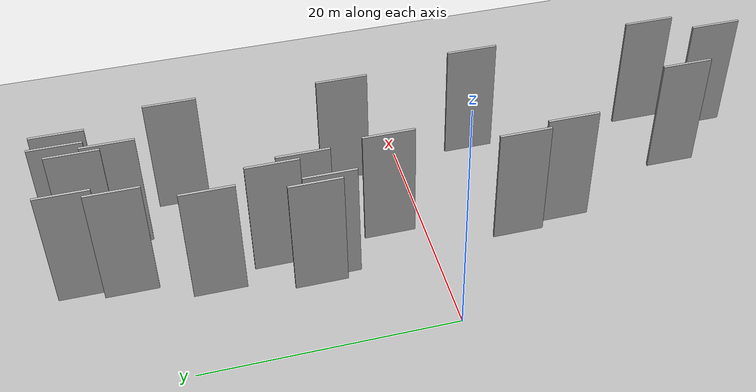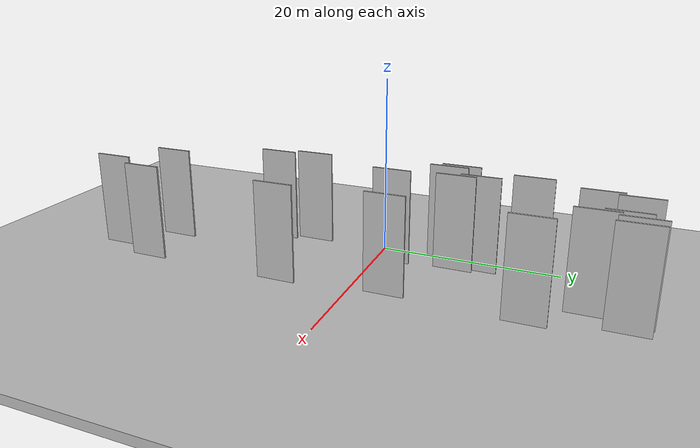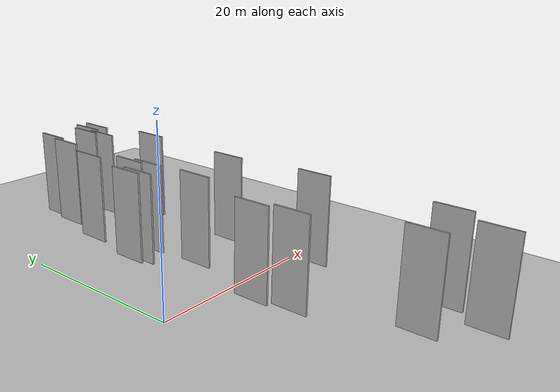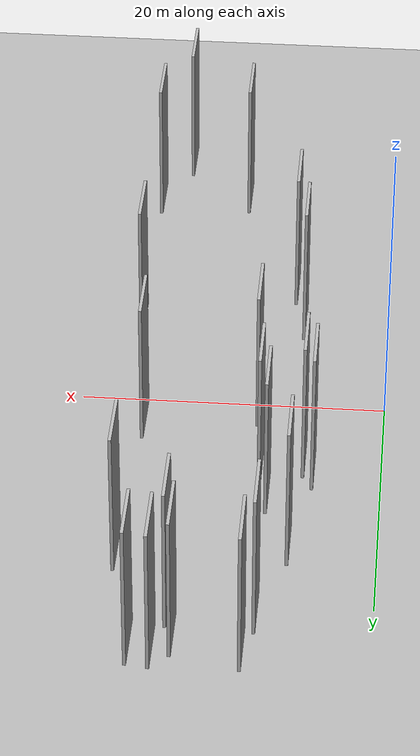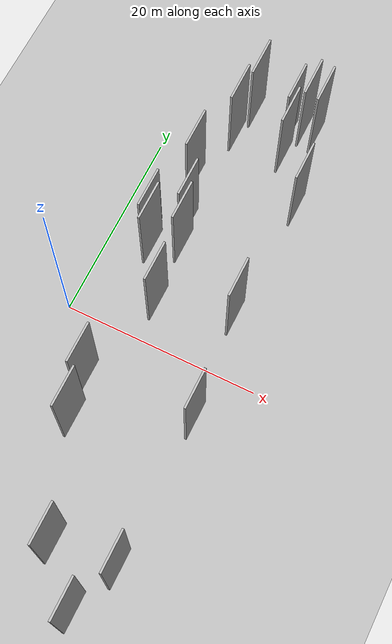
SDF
<?xml version="1.0" encoding="utf-8"?>

<sdf version="1.6">

   <world name="default">

      <gui fullscreen="0">

         <camera name="user_camera">

            <pose>-15 0 4.57585 0 0 0</pose>

            <view_controller>orbit</view_controller>

         </camera>

      </gui>

      <scene>

         <sky>

           <clouds>

             <speed>12</speed>

           </clouds>

         </sky>

         <ambient>0.4 0.4 0.4 1</ambient>

         <background>0.7 0.7 0.7 1</background>

         <shadows>1</shadows>

      </scene>

      <gravity>0 0 -9.8066</gravity>

      <magnetic_field>6e-06 2.3e-05 -4.2e-05</magnetic_field>

      <physics default="0" name="default_physics" type="ode">

         <ode>

            <solver>

               <type>quick</type>

               <iters>10</iters>

               <sor>1.0</sor>

               <use_dynamic_moi_rescaling>0</use_dynamic_moi_rescaling>

            </solver>

            <constraints>

               <cfm>0</cfm>

               <erp>0.2</erp>

               <contact_max_correcting_vel>100</contact_max_correcting_vel>

               <contact_surface_layer>0.001</contact_surface_layer>

            </constraints>

         </ode>

         <max_step_size>0.004</max_step_size>

         <real_time_factor>1</real_time_factor>

         <real_time_update_rate>250</real_time_update_rate>

      </physics>

      <light name="sun" type="directional">

         <cast_shadows>1</cast_shadows>

         <pose>0 0 10 0 0 0</pose>

         <diffuse>0.8 0.8 0.8 1</diffuse>

         <specular>0.2 0.2 0.2 1</specular>

         <attenuation>

            <range>1000</range>

            <constant>0.9</constant>

            <linear>0.01</linear>

            <quadratic>0.001</quadratic>

         </attenuation>

         <direction>-0.5 0.1 -0.9</direction>

      </light>

      <include>

         <name>ground_plane_1</name>

         <uri>model://HANNAS_ground_plane</uri>

         <pose>0 0 0  0 0 0</pose>

      </include>

      <include>

         <name>ground_plane_2</name>

         <uri>model://HANNAS_ground_plane</uri>

         <pose>100 0 0  0 0 0</pose>

      </include>

      <model name="HANNAS_wall_1">

         <static>1</static>

         <pose frame="">15.8943 18.3941 2.5 0.000000 0.000000 1.570796</pose>

         <link name="link">

            <pose frame="">0 0 5.00 0 0 0</pose>

            <collision name="collision">

               <geometry>

                  <box>

                     <size>4.00 0.2 10.00</size>

                  </box>

               </geometry>

               <max_contacts>10</max_contacts>

               <surface>

                  <contact>

                     <ode/>

                  </contact>

                  <bounce/>

                  <friction>

                     <torsional>

                        <ode/>

                     </torsional>

                     <ode/>

                  </friction>

               </surface>

            </collision>

            <visual name="visual">

               <cast_shadows>0</cast_shadows>

               <geometry>

                  <box>

                     <size>4.00 0.2 10.00</size>

                  </box>

               </geometry>

               <material>

                  <script>

                     <uri>model://HANNAS_wall/materials/scripts</uri>

                     <uri>model://HANNAS_wall/materials/textures</uri>

                     <name>vrc/HANNAS_wall</name>

                  </script>

               </material>

            </visual>

            <self_collide>0</self_collide>

            <enable_wind>0</enable_wind>

            <kinematic>0</kinematic>

         </link>

      </model>

      <model name="HANNAS_wall_2">

         <static>1</static>

         <pose frame="">10.3219 -21.1300 2.5 0.000000 0.000000 1.570796</pose>

         <link name="link">

            <pose frame="">0 0 5.00 0 0 0</pose>

            <collision name="collision">

               <geometry>

                  <box>

                     <size>4.00 0.2 10.00</size>

                  </box>

               </geometry>

               <max_contacts>10</max_contacts>

               <surface>

                  <contact>

                     <ode/>

                  </contact>

                  <bounce/>

                  <friction>

                     <torsional>

                        <ode/>

                     </torsional>

                     <ode/>

                  </friction>

               </surface>

            </collision>

            <visual name="visual">

               <cast_shadows>0</cast_shadows>

               <geometry>

                  <box>

                     <size>4.00 0.2 10.00</size>

                  </box>

               </geometry>

               <material>

                  <script>

                     <uri>model://HANNAS_wall/materials/scripts</uri>

                     <uri>model://HANNAS_wall/materials/textures</uri>

                     <name>vrc/HANNAS_wall</name>

                  </script>

               </material>

            </visual>

            <self_collide>0</self_collide>

            <enable_wind>0</enable_wind>

            <kinematic>0</kinematic>

         </link>

      </model>

      <model name="HANNAS_wall_3">

         <static>1</static>

         <pose frame="">4.2928 9.6858 2.5 0.000000 0.000000 1.570796</pose>

         <link name="link">

            <pose frame="">0 0 5.00 0 0 0</pose>

            <collision name="collision">

               <geometry>

                  <box>

                     <size>4.00 0.2 10.00</size>

                  </box>

               </geometry>

               <max_contacts>10</max_contacts>

               <surface>

                  <contact>

                     <ode/>

                  </contact>

                  <bounce/>

                  <friction>

                     <torsional>

                        <ode/>

                     </torsional>

                     <ode/>

                  </friction>

               </surface>

            </collision>

            <visual name="visual">

               <cast_shadows>0</cast_shadows>

               <geometry>

                  <box>

                     <size>4.00 0.2 10.00</size>

                  </box>

               </geometry>

               <material>

                  <script>

                     <uri>model://HANNAS_wall/materials/scripts</uri>

                     <uri>model://HANNAS_wall/materials/textures</uri>

                     <name>vrc/HANNAS_wall</name>

                  </script>

               </material>

            </visual>

            <self_collide>0</self_collide>

            <enable_wind>0</enable_wind>

            <kinematic>0</kinematic>

         </link>

      </model>

      <model name="HANNAS_wall_4">

         <static>1</static>

         <pose frame="">12.9460 26.9286 2.5 0.000000 0.000000 1.570796</pose>

         <link name="link">

            <pose frame="">0 0 5.00 0 0 0</pose>

            <collision name="collision">

               <geometry>

                  <box>

                     <size>4.00 0.2 10.00</size>

                  </box>

               </geometry>

               <max_contacts>10</max_contacts>

               <surface>

                  <contact>

                     <ode/>

                  </contact>

                  <bounce/>

                  <friction>

                     <torsional>

                        <ode/>

                     </torsional>

                     <ode/>

                  </friction>

               </surface>

            </collision>

            <visual name="visual">

               <cast_shadows>0</cast_shadows>

               <geometry>

                  <box>

                     <size>4.00 0.2 10.00</size>

                  </box>

               </geometry>

               <material>

                  <script>

                     <uri>model://HANNAS_wall/materials/scripts</uri>

                     <uri>model://HANNAS_wall/materials/textures</uri>

                     <name>vrc/HANNAS_wall</name>

                  </script>

               </material>

            </visual>

            <self_collide>0</self_collide>

            <enable_wind>0</enable_wind>

            <kinematic>0</kinematic>

         </link>

      </model>

      <model name="HANNAS_wall_5">

         <static>1</static>

         <pose frame="">16.4729 -5.4842 2.5 0.000000 0.000000 1.570796</pose>

         <link name="link">

            <pose frame="">0 0 5.00 0 0 0</pose>

            <collision name="collision">

               <geometry>

                  <box>

                     <size>4.00 0.2 10.00</size>

                  </box>

               </geometry>

               <max_contacts>10</max_contacts>

               <surface>

                  <contact>

                     <ode/>

                  </contact>

                  <bounce/>

                  <friction>

                     <torsional>

                        <ode/>

                     </torsional>

                     <ode/>

                  </friction>

               </surface>

            </collision>

            <visual name="visual">

               <cast_shadows>0</cast_shadows>

               <geometry>

                  <box>

                     <size>4.00 0.2 10.00</size>

                  </box>

               </geometry>

               <material>

                  <script>

                     <uri>model://HANNAS_wall/materials/scripts</uri>

                     <uri>model://HANNAS_wall/materials/textures</uri>

                     <name>vrc/HANNAS_wall</name>

                  </script>

               </material>

            </visual>

            <self_collide>0</self_collide>

            <enable_wind>0</enable_wind>

            <kinematic>0</kinematic>

         </link>

      </model>

      <model name="HANNAS_wall_6">

         <static>1</static>

         <pose frame="">5.6168 -6.1962 2.5 0.000000 0.000000 1.570796</pose>

         <link name="link">

            <pose frame="">0 0 5.00 0 0 0</pose>

            <collision name="collision">

               <geometry>

                  <box>

                     <size>4.00 0.2 10.00</size>

                  </box>

               </geometry>

               <max_contacts>10</max_contacts>

               <surface>

                  <contact>

                     <ode/>

                  </contact>

                  <bounce/>

                  <friction>

                     <torsional>

                        <ode/>

                     </torsional>

                     <ode/>

                  </friction>

               </surface>

            </collision>

            <visual name="visual">

               <cast_shadows>0</cast_shadows>

               <geometry>

                  <box>

                     <size>4.00 0.2 10.00</size>

                  </box>

               </geometry>

               <material>

                  <script>

                     <uri>model://HANNAS_wall/materials/scripts</uri>

                     <uri>model://HANNAS_wall/materials/textures</uri>

                     <name>vrc/HANNAS_wall</name>

                  </script>

               </material>

            </visual>

            <self_collide>0</self_collide>

            <enable_wind>0</enable_wind>

            <kinematic>0</kinematic>

         </link>

      </model>

      <model name="HANNAS_wall_7">

         <static>1</static>

         <pose frame="">15.3917 5.3323 2.5 0.000000 0.000000 1.570796</pose>

         <link name="link">

            <pose frame="">0 0 5.00 0 0 0</pose>

            <collision name="collision">

               <geometry>

                  <box>

                     <size>4.00 0.2 10.00</size>

                  </box>

               </geometry>

               <max_contacts>10</max_contacts>

               <surface>

                  <contact>

                     <ode/>

                  </contact>

                  <bounce/>

                  <friction>

                     <torsional>

                        <ode/>

                     </torsional>

                     <ode/>

                  </friction>

               </surface>

            </collision>

            <visual name="visual">

               <cast_shadows>0</cast_shadows>

               <geometry>

                  <box>

                     <size>4.00 0.2 10.00</size>

                  </box>

               </geometry>

               <material>

                  <script>

                     <uri>model://HANNAS_wall/materials/scripts</uri>

                     <uri>model://HANNAS_wall/materials/textures</uri>

                     <name>vrc/HANNAS_wall</name>

                  </script>

               </material>

            </visual>

            <self_collide>0</self_collide>

            <enable_wind>0</enable_wind>

            <kinematic>0</kinematic>

         </link>

      </model>

      <model name="HANNAS_wall_8">

         <static>1</static>

         <pose frame="">11.7947 25.7970 2.5 0.000000 0.000000 1.570796</pose>

         <link name="link">

            <pose frame="">0 0 5.00 0 0 0</pose>

            <collision name="collision">

               <geometry>

                  <box>

                     <size>4.00 0.2 10.00</size>

                  </box>

               </geometry>

               <max_contacts>10</max_contacts>

               <surface>

                  <contact>

                     <ode/>

                  </contact>

                  <bounce/>

                  <friction>

                     <torsional>

                        <ode/>

                     </torsional>

                     <ode/>

                  </friction>

               </surface>

            </collision>

            <visual name="visual">

               <cast_shadows>0</cast_shadows>

               <geometry>

                  <box>

                     <size>4.00 0.2 10.00</size>

                  </box>

               </geometry>

               <material>

                  <script>

                     <uri>model://HANNAS_wall/materials/scripts</uri>

                     <uri>model://HANNAS_wall/materials/textures</uri>

                     <name>vrc/HANNAS_wall</name>

                  </script>

               </material>

            </visual>

            <self_collide>0</self_collide>

            <enable_wind>0</enable_wind>

            <kinematic>0</kinematic>

         </link>

      </model>

      <model name="HANNAS_wall_9">

         <static>1</static>

         <pose frame="">6.3567 -10.1905 2.5 0.000000 0.000000 1.570796</pose>

         <link name="link">

            <pose frame="">0 0 5.00 0 0 0</pose>

            <collision name="collision">

               <geometry>

                  <box>

                     <size>4.00 0.2 10.00</size>

                  </box>

               </geometry>

               <max_contacts>10</max_contacts>

               <surface>

                  <contact>

                     <ode/>

                  </contact>

                  <bounce/>

                  <friction>

                     <torsional>

                        <ode/>

                     </torsional>

                     <ode/>

                  </friction>

               </surface>

            </collision>

            <visual name="visual">

               <cast_shadows>0</cast_shadows>

               <geometry>

                  <box>

                     <size>4.00 0.2 10.00</size>

                  </box>

               </geometry>

               <material>

                  <script>

                     <uri>model://HANNAS_wall/materials/scripts</uri>

                     <uri>model://HANNAS_wall/materials/textures</uri>

                     <name>vrc/HANNAS_wall</name>

                  </script>

               </material>

            </visual>

            <self_collide>0</self_collide>

            <enable_wind>0</enable_wind>

            <kinematic>0</kinematic>

         </link>

      </model>

      <model name="HANNAS_wall_10">

         <static>1</static>

         <pose frame="">7.0069 23.4087 2.5 0.000000 0.000000 1.570796</pose>

         <link name="link">

            <pose frame="">0 0 5.00 0 0 0</pose>

            <collision name="collision">

               <geometry>

                  <box>

                     <size>4.00 0.2 10.00</size>

                  </box>

               </geometry>

               <max_contacts>10</max_contacts>

               <surface>

                  <contact>

                     <ode/>

                  </contact>

                  <bounce/>

                  <friction>

                     <torsional>

                        <ode/>

                     </torsional>

                     <ode/>

                  </friction>

               </surface>

            </collision>

            <visual name="visual">

               <cast_shadows>0</cast_shadows>

               <geometry>

                  <box>

                     <size>4.00 0.2 10.00</size>

                  </box>

               </geometry>

               <material>

                  <script>

                     <uri>model://HANNAS_wall/materials/scripts</uri>

                     <uri>model://HANNAS_wall/materials/textures</uri>

                     <name>vrc/HANNAS_wall</name>

                  </script>

               </material>

            </visual>

            <self_collide>0</self_collide>

            <enable_wind>0</enable_wind>

            <kinematic>0</kinematic>

         </link>

      </model>

      <model name="HANNAS_wall_11">

         <static>1</static>

         <pose frame="">14.3197 26.7380 2.5 0.000000 0.000000 1.570796</pose>

         <link name="link">

            <pose frame="">0 0 5.00 0 0 0</pose>

            <collision name="collision">

               <geometry>

                  <box>

                     <size>4.00 0.2 10.00</size>

                  </box>

               </geometry>

               <max_contacts>10</max_contacts>

               <surface>

                  <contact>

                     <ode/>

                  </contact>

                  <bounce/>

                  <friction>

                     <torsional>

                        <ode/>

                     </torsional>

                     <ode/>

                  </friction>

               </surface>

            </collision>

            <visual name="visual">

               <cast_shadows>0</cast_shadows>

               <geometry>

                  <box>

                     <size>4.00 0.2 10.00</size>

                  </box>

               </geometry>

               <material>

                  <script>

                     <uri>model://HANNAS_wall/materials/scripts</uri>

                     <uri>model://HANNAS_wall/materials/textures</uri>

                     <name>vrc/HANNAS_wall</name>

                  </script>

               </material>

            </visual>

            <self_collide>0</self_collide>

            <enable_wind>0</enable_wind>

            <kinematic>0</kinematic>

         </link>

      </model>

      <model name="HANNAS_wall_12">

         <static>1</static>

         <pose frame="">5.4234 17.0905 2.5 0.000000 0.000000 1.570796</pose>

         <link name="link">

            <pose frame="">0 0 5.00 0 0 0</pose>

            <collision name="collision">

               <geometry>

                  <box>

                     <size>4.00 0.2 10.00</size>

                  </box>

               </geometry>

               <max_contacts>10</max_contacts>

               <surface>

                  <contact>

                     <ode/>

                  </contact>

                  <bounce/>

                  <friction>

                     <torsional>

                        <ode/>

                     </torsional>

                     <ode/>

                  </friction>

               </surface>

            </collision>

            <visual name="visual">

               <cast_shadows>0</cast_shadows>

               <geometry>

                  <box>

                     <size>4.00 0.2 10.00</size>

                  </box>

               </geometry>

               <material>

                  <script>

                     <uri>model://HANNAS_wall/materials/scripts</uri>

                     <uri>model://HANNAS_wall/materials/textures</uri>

                     <name>vrc/HANNAS_wall</name>

                  </script>

               </material>

            </visual>

            <self_collide>0</self_collide>

            <enable_wind>0</enable_wind>

            <kinematic>0</kinematic>

         </link>

      </model>

      <model name="HANNAS_wall_13">

         <static>1</static>

         <pose frame="">8.1016 3.4651 2.5 0.000000 0.000000 1.570796</pose>

         <link name="link">

            <pose frame="">0 0 5.00 0 0 0</pose>

            <collision name="collision">

               <geometry>

                  <box>

                     <size>4.00 0.2 10.00</size>

                  </box>

               </geometry>

               <max_contacts>10</max_contacts>

               <surface>

                  <contact>

                     <ode/>

                  </contact>

                  <bounce/>

                  <friction>

                     <torsional>

                        <ode/>

                     </torsional>

                     <ode/>

                  </friction>

               </surface>

            </collision>

            <visual name="visual">

               <cast_shadows>0</cast_shadows>

               <geometry>

                  <box>

                     <size>4.00 0.2 10.00</size>

                  </box>

               </geometry>

               <material>

                  <script>

                     <uri>model://HANNAS_wall/materials/scripts</uri>

                     <uri>model://HANNAS_wall/materials/textures</uri>

                     <name>vrc/HANNAS_wall</name>

                  </script>

               </material>

            </visual>

            <self_collide>0</self_collide>

            <enable_wind>0</enable_wind>

            <kinematic>0</kinematic>

         </link>

      </model>

      <model name="HANNAS_wall_14">

         <static>1</static>

         <pose frame="">7.0378 12.2461 2.5 0.000000 0.000000 1.570796</pose>

         <link name="link">

            <pose frame="">0 0 5.00 0 0 0</pose>

            <collision name="collision">

               <geometry>

                  <box>

                     <size>4.00 0.2 10.00</size>

                  </box>

               </geometry>

               <max_contacts>10</max_contacts>

               <surface>

                  <contact>

                     <ode/>

                  </contact>

                  <bounce/>

                  <friction>

                     <torsional>

                        <ode/>

                     </torsional>

                     <ode/>

                  </friction>

               </surface>

            </collision>

            <visual name="visual">

               <cast_shadows>0</cast_shadows>

               <geometry>

                  <box>

                     <size>4.00 0.2 10.00</size>

                  </box>

               </geometry>

               <material>

                  <script>

                     <uri>model://HANNAS_wall/materials/scripts</uri>

                     <uri>model://HANNAS_wall/materials/textures</uri>

                     <name>vrc/HANNAS_wall</name>

                  </script>

               </material>

            </visual>

            <self_collide>0</self_collide>

            <enable_wind>0</enable_wind>

            <kinematic>0</kinematic>

         </link>

      </model>

      <model name="HANNAS_wall_15">

         <static>1</static>

         <pose frame="">7.5993 9.9114 2.5 0.000000 0.000000 1.570796</pose>

         <link name="link">

            <pose frame="">0 0 5.00 0 0 0</pose>

            <collision name="collision">

               <geometry>

                  <box>

                     <size>4.00 0.2 10.00</size>

                  </box>

               </geometry>

               <max_contacts>10</max_contacts>

               <surface>

                  <contact>

                     <ode/>

                  </contact>

                  <bounce/>

                  <friction>

                     <torsional>

                        <ode/>

                     </torsional>

                     <ode/>

                  </friction>

               </surface>

            </collision>

            <visual name="visual">

               <cast_shadows>0</cast_shadows>

               <geometry>

                  <box>

                     <size>4.00 0.2 10.00</size>

                  </box>

               </geometry>

               <material>

                  <script>

                     <uri>model://HANNAS_wall/materials/scripts</uri>

                     <uri>model://HANNAS_wall/materials/textures</uri>

                     <name>vrc/HANNAS_wall</name>

                  </script>

               </material>

            </visual>

            <self_collide>0</self_collide>

            <enable_wind>0</enable_wind>

            <kinematic>0</kinematic>

         </link>

      </model>

      <model name="HANNAS_wall_16">

         <static>1</static>

         <pose frame="">14.6696 -25.6199 2.5 0.000000 0.000000 1.570796</pose>

         <link name="link">

            <pose frame="">0 0 5.00 0 0 0</pose>

            <collision name="collision">

               <geometry>

                  <box>

                     <size>4.00 0.2 10.00</size>

                  </box>

               </geometry>

               <max_contacts>10</max_contacts>

               <surface>

                  <contact>

                     <ode/>

                  </contact>

                  <bounce/>

                  <friction>

                     <torsional>

                        <ode/>

                     </torsional>

                     <ode/>

                  </friction>

               </surface>

            </collision>

            <visual name="visual">

               <cast_shadows>0</cast_shadows>

               <geometry>

                  <box>

                     <size>4.00 0.2 10.00</size>

                  </box>

               </geometry>

               <material>

                  <script>

                     <uri>model://HANNAS_wall/materials/scripts</uri>

                     <uri>model://HANNAS_wall/materials/textures</uri>

                     <name>vrc/HANNAS_wall</name>

                  </script>

               </material>

            </visual>

            <self_collide>0</self_collide>

            <enable_wind>0</enable_wind>

            <kinematic>0</kinematic>

         </link>

      </model>

      <model name="HANNAS_wall_17">

         <static>1</static>

         <pose frame="">16.4983 -20.5970 2.5 0.000000 0.000000 1.570796</pose>

         <link name="link">

            <pose frame="">0 0 5.00 0 0 0</pose>

            <collision name="collision">

               <geometry>

                  <box>

                     <size>4.00 0.2 10.00</size>

                  </box>

               </geometry>

               <max_contacts>10</max_contacts>

               <surface>

                  <contact>

                     <ode/>

                  </contact>

                  <bounce/>

                  <friction>

                     <torsional>

                        <ode/>

                     </torsional>

                     <ode/>

                  </friction>

               </surface>

            </collision>

            <visual name="visual">

               <cast_shadows>0</cast_shadows>

               <geometry>

                  <box>

                     <size>4.00 0.2 10.00</size>

                  </box>

               </geometry>

               <material>

                  <script>

                     <uri>model://HANNAS_wall/materials/scripts</uri>

                     <uri>model://HANNAS_wall/materials/textures</uri>

                     <name>vrc/HANNAS_wall</name>

                  </script>

               </material>

            </visual>

            <self_collide>0</self_collide>

            <enable_wind>0</enable_wind>

            <kinematic>0</kinematic>

         </link>

      </model>

      <model name="HANNAS_wall_18">

         <static>1</static>

         <pose frame="">4.9161 8.5361 2.5 0.000000 0.000000 1.570796</pose>

         <link name="link">

            <pose frame="">0 0 5.00 0 0 0</pose>

            <collision name="collision">

               <geometry>

                  <box>

                     <size>4.00 0.2 10.00</size>

                  </box>

               </geometry>

               <max_contacts>10</max_contacts>

               <surface>

                  <contact>

                     <ode/>

                  </contact>

                  <bounce/>

                  <friction>

                     <torsional>

                        <ode/>

                     </torsional>

                     <ode/>

                  </friction>

               </surface>

            </collision>

            <visual name="visual">

               <cast_shadows>0</cast_shadows>

               <geometry>

                  <box>

                     <size>4.00 0.2 10.00</size>

                  </box>

               </geometry>

               <material>

                  <script>

                     <uri>model://HANNAS_wall/materials/scripts</uri>

                     <uri>model://HANNAS_wall/materials/textures</uri>

                     <name>vrc/HANNAS_wall</name>

                  </script>

               </material>

            </visual>

            <self_collide>0</self_collide>

            <enable_wind>0</enable_wind>

            <kinematic>0</kinematic>

         </link>

      </model>

      <model name="HANNAS_wall_19">

         <static>1</static>

         <pose frame="">7.6217 26.7476 2.5 0.000000 0.000000 1.570796</pose>

         <link name="link">

            <pose frame="">0 0 5.00 0 0 0</pose>

            <collision name="collision">

               <geometry>

                  <box>

                     <size>4.00 0.2 10.00</size>

                  </box>

               </geometry>

               <max_contacts>10</max_contacts>

               <surface>

                  <contact>

                     <ode/>

                  </contact>

                  <bounce/>

                  <friction>

                     <torsional>

                        <ode/>

                     </torsional>

                     <ode/>

                  </friction>

               </surface>

            </collision>

            <visual name="visual">

               <cast_shadows>0</cast_shadows>

               <geometry>

                  <box>

                     <size>4.00 0.2 10.00</size>

                  </box>

               </geometry>

               <material>

                  <script>

                     <uri>model://HANNAS_wall/materials/scripts</uri>

                     <uri>model://HANNAS_wall/materials/textures</uri>

                     <name>vrc/HANNAS_wall</name>

                  </script>

               </material>

            </visual>

            <self_collide>0</self_collide>

            <enable_wind>0</enable_wind>

            <kinematic>0</kinematic>

         </link>

      </model>

      <model name="HANNAS_wall_20">

         <static>1</static>

         <pose frame="">12.2868 23.2757 2.5 0.000000 0.000000 1.570796</pose>

         <link name="link">

            <pose frame="">0 0 5.00 0 0 0</pose>

            <collision name="collision">

               <geometry>

                  <box>

                     <size>4.00 0.2 10.00</size>

                  </box>

               </geometry>

               <max_contacts>10</max_contacts>

               <surface>

                  <contact>

                     <ode/>

                  </contact>

                  <bounce/>

                  <friction>

                     <torsional>

                        <ode/>

                     </torsional>

                     <ode/>

                  </friction>

               </surface>

            </collision>

            <visual name="visual">

               <cast_shadows>0</cast_shadows>

               <geometry>

                  <box>

                     <size>4.00 0.2 10.00</size>

                  </box>

               </geometry>

               <material>

                  <script>

                     <uri>model://HANNAS_wall/materials/scripts</uri>

                     <uri>model://HANNAS_wall/materials/textures</uri>

                     <name>vrc/HANNAS_wall</name>

                  </script>

               </material>

            </visual>

            <self_collide>0</self_collide>

            <enable_wind>0</enable_wind>

            <kinematic>0</kinematic>

         </link>

      </model>

   </world>

</sdf>

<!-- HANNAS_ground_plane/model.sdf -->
<sdf version="1.4">
<model name="HANNAS_ground_plane">
  <static>true</static>
    <link name="link">
      <collision name="collision">
        <geometry>
          <plane>
            <normal>0 0 1</normal>
            <size>1000 1000</size>
          </plane>
        </geometry>
        <surface>
          <friction>
            <ode>
              <mu>100</mu>
              <mu2>50</mu2>
            </ode>
          </friction>
        </surface>
      </collision>
      <visual name="visual">
        <cast_shadows>false</cast_shadows>
        <geometry>
          <plane>
            <normal>0 0 1</normal>
            <size>1000 1000</size>
          </plane>
        </geometry>
        <material>
          <script>
            <uri>model://HANNAS_ground_plane/materials/scripts/HANNAS_ground_plane.material</uri>
	    <uri>model://HANNAS_ground_plane/materials/textures</uri>
            <name>HANNASGroundPlane/Image</name>
          </script>
        </material>
      </visual>
    </link>
  </model>
</sdf>
